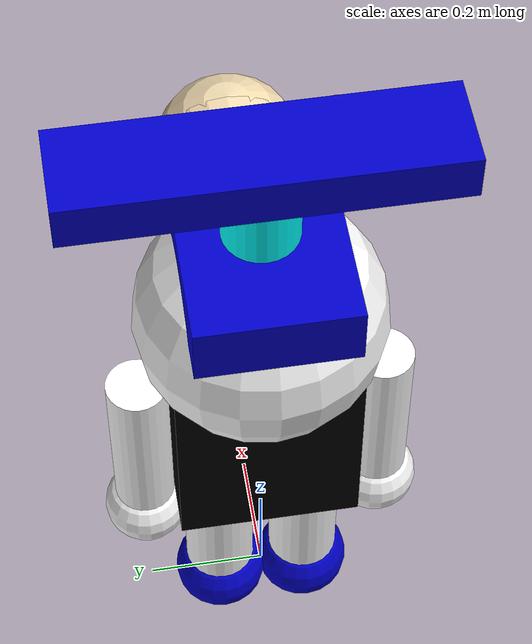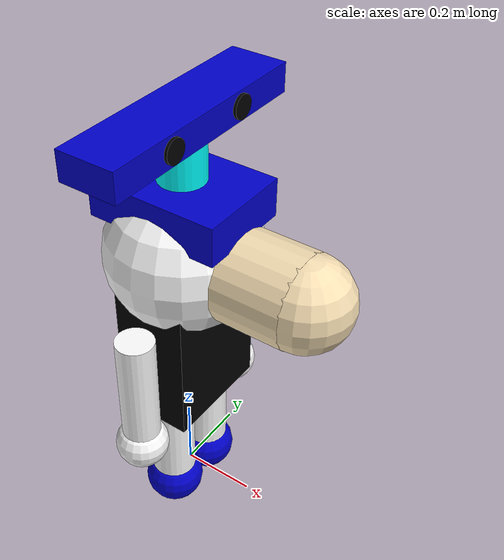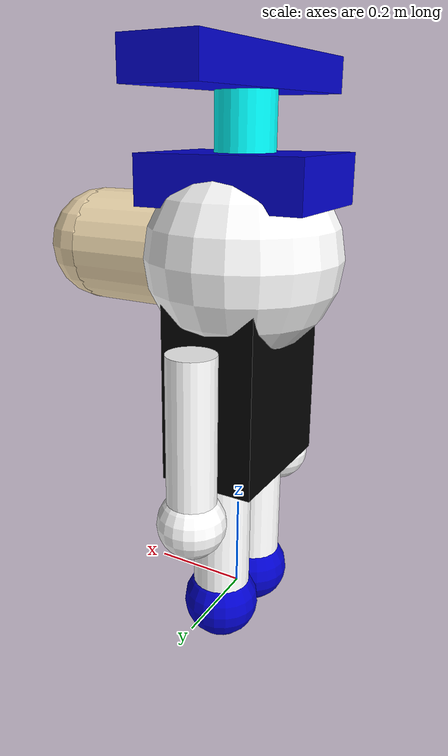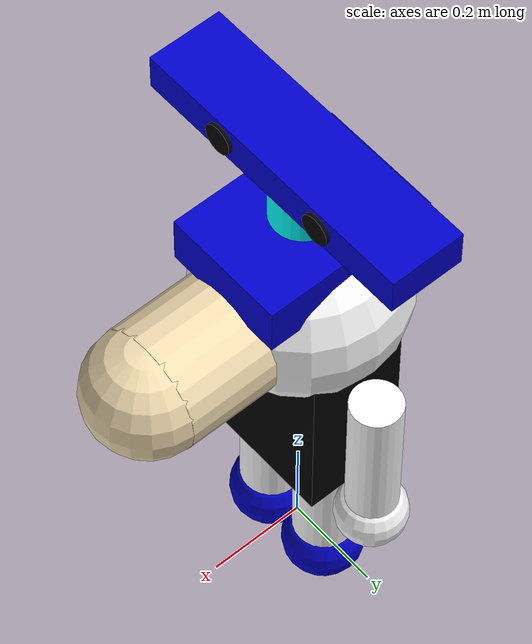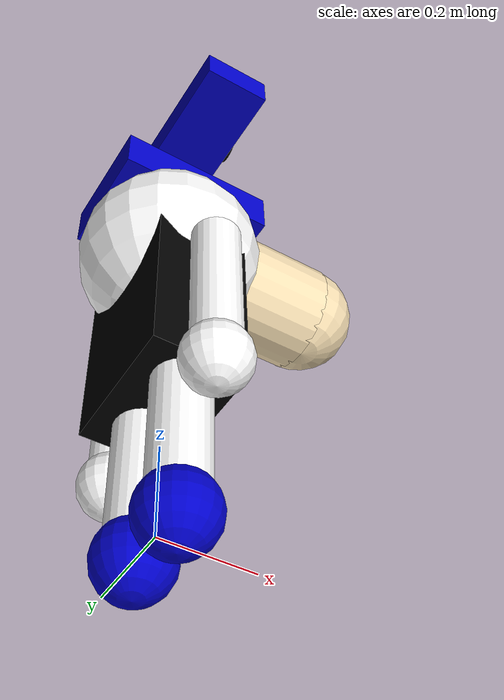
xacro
<?xml version="1.0"?>
<robot name="cnuchacha" xmlns:xacro="http://www.ros.org/wiki/xacro">
  <xacro:arg name="prefix" default="" />

  <!-- Import materials (colors) -->
  <xacro:include filename="$(find cnuchacha_description)/urdf/cnuchacha_materials.xacro" />

  <!-- Import cnuchacha macro -->
  <xacro:include filename="$(find cnuchacha_description)/urdf/cnuchacha_macro.xacro" />

  <!-- Used for fixing robot -->
  <link name="world"/>

  <xacro:cnuchacha parent="world" prefix="$(arg prefix)">
    <origin xyz="0 0 0" rpy="0 0 0" />
  </xacro:cnuchacha>

</robot>

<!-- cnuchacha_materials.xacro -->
<!--
Copied from ROS1 example -
https://github.com/ros-simulation/gazebo_ros_demos/blob/kinetic-devel/rrbot_description/urdf/materials.xacro
-->
<robot>
  <material name="black">
    <color rgba="0.0 0.0 0.0 1.0"/>
  </material>

  <material name="blue">
    <color rgba="0.0 0.0 0.8 1.0"/>
  </material>

  <material name="green">
    <color rgba="0.0 0.8 0.0 1.0"/>
  </material>

  <material name="grey">
    <color rgba="0.2 0.2 0.2 1.0"/>
  </material>

  <material name="beige">
    <color rgba="0.96 0.87 0.70 1.0"/>
  </material>

  <material name="orange">
    <color rgba="${255/255} ${108/255} ${10/255} 1.0"/>
  </material>

  <material name="brown">
    <color rgba="${222/255} ${207/255} ${195/255} 1.0"/>
  </material>

  <material name="red">
    <color rgba="0.8 0.0 0.0 1.0"/>
  </material>

  <material name="yellow">
    <color rgba="1.0 1.0 0.0 1.0"/>
  </material>

  <material name="white">
    <color rgba="1.0 1.0 1.0 1.0"/>
  </material>

  <material name="navy">
    <color rgba="0.0 0.0 0.3 1.0"/>
  </material>

  <material name="cyan">
    <color rgba="0.0 1.0 1.0 1.0"/>
  </material>
</robot>

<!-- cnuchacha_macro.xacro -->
<robot xmlns:xacro="http://www.ros.org/wiki/xacro">

  <xacro:macro name="cnuchacha" params="parent prefix *origin">
    <!-- Constants for Chacha & Nupjuki dimensions -->
    <xacro:property name="mass" value="1.0" />
    <xacro:property name="body_w" value="0.3" />
    <xacro:property name="body_d" value="0.2" />
    <xacro:property name="body_h" value="0.4" />
    <xacro:property name="leg_r" value="0.06" />
    <xacro:property name="leg_l" value="0.3" />
    <xacro:property name="arm_r" value="0.05" />
    <xacro:property name="arm_l" value="0.35" />
    <xacro:property name="head_r" value="0.2" />

    <joint name="${prefix}base_joint" type="fixed">
      <xacro:insert_block name="origin" />
      <parent link="${parent}"/>
      <child link="${prefix}base_link" />
    </joint>

    <!-- Base Link (Torso / Chacha's Navy Body) -->
    <link name="${prefix}base_link">
      <visual>
        <origin xyz="0 0 ${body_h/2 + leg_l}" rpy="0 0 0"/>
        <geometry><box size="${body_d} ${body_w} ${body_h}"/></geometry>
        <material name="black"/>
      </visual>
      <collision>
        <origin xyz="0 0 ${body_h/2 + leg_l}" rpy="0 0 0"/>
        <geometry><box size="${body_d} ${body_w} ${body_h}"/></geometry>
      </collision>
      <inertial>
        <origin xyz="0 0 ${body_h/2 + leg_l}" rpy="0 0 0"/>
        <mass value="${mass * 5}"/>
        <inertia ixx="0.1" ixy="0.0" ixz="0.0" iyy="0.1" iyz="0.0" izz="0.1"/>
      </inertial>
    </link>

    <!-- Hat Brim -->
    <joint name="${prefix}hat_brim_joint" type="fixed">
      <parent link="${prefix}base_link"/>
      <child link="${prefix}hat_brim_link"/>
      <origin xyz="0 0 ${leg_l + body_h + head_r}" rpy="0 0 0"/>
    </joint>
    <link name="${prefix}hat_brim_link">
      <visual>
        <origin xyz="0 0 0" rpy="0 0 0"/>
        <geometry><box size="0.35 0.25 0.1"/></geometry>
        <material name="blue"/>
      </visual>
      <collision>
        <origin xyz="0 0 0" rpy="0 0 0"/>
        <geometry><box size="0.35 0.25 0.1"/></geometry>
      </collision>
      <inertial>
        <mass value="0.05"/>
        <inertia ixx="0.001" ixy="0.0" ixz="0.0" iyy="0.001" iyz="0.0" izz="0.001"/>
      </inertial>
    </link>

    <!-- Chacha Head -->
    <joint name="${prefix}head_joint" type="fixed">
      <parent link="${prefix}base_link"/>
      <child link="${prefix}head_link"/>
      <origin xyz="0 0 ${leg_l + body_h + 0.05}" rpy="0 0 0"/>
    </joint>
    <link name="${prefix}head_link">
      <visual>
        <origin xyz="0 0 0" rpy="0 0 0"/>
        <geometry><sphere radius="${head_r}"/></geometry>
        <material name="white"/>
      </visual>
      <visual> <!-- Snout -->
        <origin xyz="${head_r*0.7} 0 0" rpy="0 ${pi/2} 0"/>
        <geometry><cylinder radius="0.12" length="0.4"/></geometry>
        <material name="beige"/>
      </visual>
      <visual>
        <origin xyz="${head_r*0.7 + 0.2} 0 0" rpy="0 0 0"/>
        <geometry><sphere radius="0.12"/></geometry>
        <material name="beige"/>
      </visual>
      <collision>
        <origin xyz="0 0 0" rpy="0 0 0"/>
        <geometry><sphere radius="${head_r}"/></geometry>
      </collision>
      <inertial>
        <origin xyz="0 0 0" rpy="0 0 0"/>
        <mass value="${mass}"/>
        <inertia ixx="0.01" ixy="0.0" ixz="0.0" iyy="0.01" iyz="0.0" izz="0.01"/>
      </inertial>
    </link>

    <!-- Legs -->
    <joint name="${prefix}left_leg_joint" type="fixed">
      <parent link="${prefix}base_link"/>
      <child link="${prefix}left_leg"/>
      <origin xyz="0 ${body_w/4} ${leg_l}" rpy="0 0 0"/>
    </joint>
    <link name="${prefix}left_leg">
      <visual>
        <origin xyz="0 0 ${-leg_l/2}" rpy="0 0 0"/>
        <geometry><cylinder radius="${leg_r}" length="${leg_l}"/></geometry>
        <material name="white"/>
      </visual>
      <collision>
        <origin xyz="0 0 ${-leg_l/2}" rpy="0 0 0"/>
        <geometry><cylinder radius="${leg_r}" length="${leg_l}"/></geometry>
      </collision>
      <inertial>
        <origin xyz="0 0 ${-leg_l/2}" rpy="0 0 0"/>
        <mass value="${mass}"/>
        <inertia ixx="0.01" ixy="0.0" ixz="0.0" iyy="0.01" iyz="0.0" izz="0.01"/>
      </inertial>
    </link>

    <joint name="${prefix}right_leg_joint" type="fixed">
      <parent link="${prefix}base_link"/>
      <child link="${prefix}right_leg"/>
      <origin xyz="0 ${-body_w/4} ${leg_l}" rpy="0 0 0"/>
    </joint>
    <link name="${prefix}right_leg">
      <visual>
        <origin xyz="0 0 ${-leg_l/2}" rpy="0 0 0"/>
        <geometry><cylinder radius="${leg_r}" length="${leg_l}"/></geometry>
        <material name="white"/>
      </visual>
      <collision>
        <origin xyz="0 0 ${-leg_l/2}" rpy="0 0 0"/>
        <geometry><cylinder radius="${leg_r}" length="${leg_l}"/></geometry>
      </collision>
      <inertial>
        <origin xyz="0 0 ${-leg_l/2}" rpy="0 0 0"/>
        <mass value="${mass}"/>
        <inertia ixx="0.01" ixy="0.0" ixz="0.0" iyy="0.01" iyz="0.0" izz="0.01"/>
      </inertial>
    </link>

    <!-- Left Foot -->
    <joint name="${prefix}left_foot_joint" type="fixed">
      <parent link="${prefix}left_leg"/>
      <child link="${prefix}left_foot"/>
      <origin xyz="0 0 ${-leg_l}" rpy="0 0 0"/>
    </joint>
    <link name="${prefix}left_foot">
      <visual>
        <origin xyz="0 0 0" rpy="0 0 0"/>
        <geometry><sphere radius="0.08"/></geometry>
        <material name="blue"/>
      </visual>
      <inertial>
        <mass value="0.1"/>
        <inertia ixx="0.001" ixy="0.0" ixz="0.0" iyy="0.001" iyz="0.0" izz="0.001"/>
      </inertial>
    </link>

    <!-- Right Foot -->
    <joint name="${prefix}right_foot_joint" type="fixed">
      <parent link="${prefix}right_leg"/>
      <child link="${prefix}right_foot"/>
      <origin xyz="0 0 ${-leg_l}" rpy="0 0 0"/>
    </joint>
    <link name="${prefix}right_foot">
      <visual>
        <origin xyz="0 0 0" rpy="0 0 0"/>
        <geometry><sphere radius="0.08"/></geometry>
        <material name="blue"/>
      </visual>
      <inertial>
        <mass value="0.1"/>
        <inertia ixx="0.001" ixy="0.0" ixz="0.0" iyy="0.001" iyz="0.0" izz="0.001"/>
      </inertial>
    </link>

    <!-- Arms (joint1 and joint2 for backward compatibility with controllers) -->
    <!-- Left Arm -->
    <joint name="${prefix}joint1" type="revolute">
      <parent link="${prefix}base_link"/>
      <child link="${prefix}left_arm"/>
      <origin xyz="0 ${body_w/2 + arm_r} ${leg_l + body_h - arm_r*2}" rpy="0 0 0"/>
      <axis xyz="0 1 0"/>
      <dynamics damping="0.7"/>
      <limit effort="100" velocity="1.0" lower="-1.57" upper="1.57"/>
    </joint>
    <link name="${prefix}left_arm">
      <visual>
        <origin xyz="0 0 ${-arm_l/2}" rpy="0 0 0"/>
        <geometry><cylinder radius="${arm_r}" length="${arm_l}"/></geometry>
        <material name="white"/>
      </visual>
      <collision>
        <origin xyz="0 0 ${-arm_l/2}" rpy="0 0 0"/>
        <geometry><cylinder radius="${arm_r}" length="${arm_l}"/></geometry>
      </collision>
      <inertial>
        <origin xyz="0 0 ${-arm_l/2}" rpy="0 0 0"/>
        <mass value="${mass}"/>
        <inertia ixx="0.01" ixy="0.0" ixz="0.0" iyy="0.01" iyz="0.0" izz="0.01"/>
      </inertial>
    </link>

    <!-- Right Arm -->
    <joint name="${prefix}joint2" type="revolute">
      <parent link="${prefix}base_link"/>
      <child link="${prefix}right_arm"/>
      <origin xyz="0 ${-body_w/2 - arm_r} ${leg_l + body_h - arm_r*2}" rpy="0 0 0"/>
      <axis xyz="0 1 0"/>
      <dynamics damping="0.7"/>
      <limit effort="100" velocity="1.0" lower="-1.57" upper="1.57"/>
    </joint>
    <link name="${prefix}right_arm">
      <visual>
        <origin xyz="0 0 ${-arm_l/2}" rpy="0 0 0"/>
        <geometry><cylinder radius="${arm_r}" length="${arm_l}"/></geometry>
        <material name="white"/>
      </visual>
      <collision>
        <origin xyz="0 0 ${-arm_l/2}" rpy="0 0 0"/>
        <geometry><cylinder radius="${arm_r}" length="${arm_l}"/></geometry>
      </collision>
      <inertial>
        <origin xyz="0 0 ${-arm_l/2}" rpy="0 0 0"/>
        <mass value="${mass}"/>
        <inertia ixx="0.01" ixy="0.0" ixz="0.0" iyy="0.01" iyz="0.0" izz="0.01"/>
      </inertial>
    </link>

    <!-- Left Hand -->
    <joint name="${prefix}left_hand_joint" type="fixed">
      <parent link="${prefix}left_arm"/>
      <child link="${prefix}left_hand"/>
      <origin xyz="0 0 ${-arm_l}" rpy="0 0 0"/>
    </joint>
    <link name="${prefix}left_hand">
      <visual>
        <origin xyz="0 0 0" rpy="0 0 0"/>
        <geometry><sphere radius="0.07"/></geometry>
        <material name="white"/>
      </visual>
      <inertial>
        <mass value="0.1"/>
        <inertia ixx="0.001" ixy="0.0" ixz="0.0" iyy="0.001" iyz="0.0" izz="0.001"/>
      </inertial>
    </link>

    <!-- Right Hand -->
    <joint name="${prefix}right_hand_joint" type="fixed">
      <parent link="${prefix}right_arm"/>
      <child link="${prefix}right_hand"/>
      <origin xyz="0 0 ${-arm_l}" rpy="0 0 0"/>
    </joint>
    <link name="${prefix}right_hand">
      <visual>
        <origin xyz="0 0 0" rpy="0 0 0"/>
        <geometry><sphere radius="0.07"/></geometry>
        <material name="white"/>
      </visual>
      <inertial>
        <mass value="0.1"/>
        <inertia ixx="0.001" ixy="0.0" ixz="0.0" iyy="0.001" iyz="0.0" izz="0.001"/>
      </inertial>
    </link>

    <!-- Nupjuki (KAIST Mascot on Hat) -->
    <joint name="${prefix}nupjuki_joint" type="revolute">
      <parent link="${prefix}head_link"/>
      <child link="${prefix}nupjuki_link"/>
      <origin xyz="0 0 ${head_r}" rpy="0 0 0"/>
      <axis xyz="0 0 1"/>
      <dynamics damping="0.7"/>
      <limit effort="100" velocity="1.0" lower="-3.14" upper="3.14"/>
    </joint>
    <link name="${prefix}nupjuki_link">
      <!-- Nupjuki Body -->
      <visual>
        <origin xyz="0 0 0.075" rpy="0 0 0"/>
        <geometry><cylinder radius="0.06" length="0.15"/></geometry>
        <material name="cyan"/>
      </visual>
      <!-- Nupjuki Flat Head -->
      <visual>
        <origin xyz="0 0 0.15" rpy="0 0 0"/>
        <geometry><box size="0.15 0.6 0.075"/></geometry>
        <material name="blue"/>
      </visual>
      <!-- Left Eye -->
      <visual>
        <origin xyz="0.075 0.12 0.15" rpy="0 ${pi/2} 0"/>
        <geometry><cylinder radius="0.03" length="0.015"/></geometry>
        <material name="black"/>
      </visual>
      <!-- Right Eye -->
      <visual>
        <origin xyz="0.075 -0.12 0.15" rpy="0 ${pi/2} 0"/>
        <geometry><cylinder radius="0.03" length="0.015"/></geometry>
        <material name="black"/>
      </visual>
      <collision>
        <origin xyz="0 0 0.15" rpy="0 0 0"/>
        <geometry><box size="0.15 0.6 0.075"/></geometry>
      </collision>
      <inertial>
        <origin xyz="0 0 0.15" rpy="0 0 0"/>
        <mass value="0.1"/>
        <inertia ixx="0.001" ixy="0.0" ixz="0.0" iyy="0.001" iyz="0.0" izz="0.001"/>
      </inertial>
    </link>

  </xacro:macro>
</robot>
